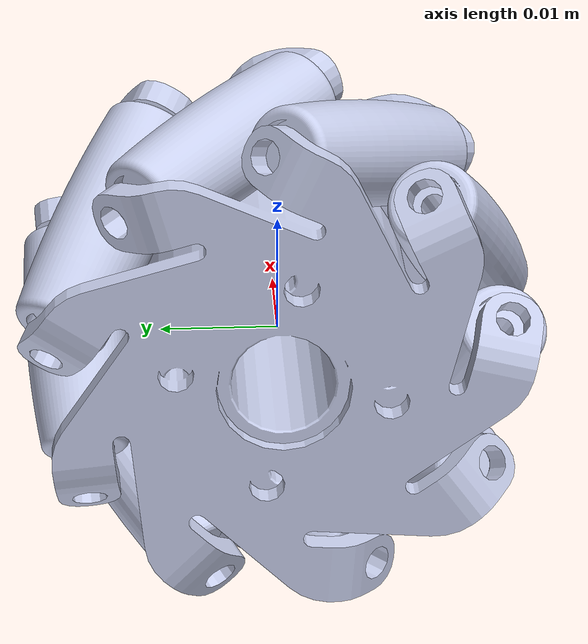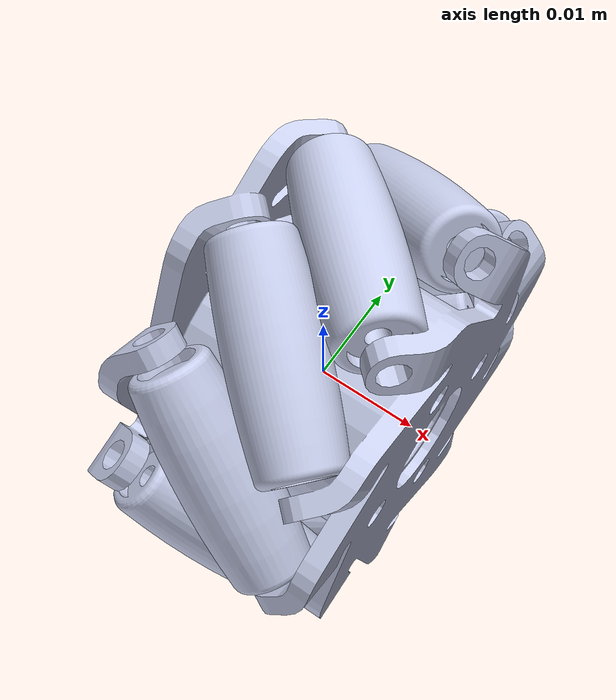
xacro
<?xml version="1.0"?>

<robot name="Mecanum-Left" xmlns:xacro="http://www.ros.org/wiki/xacro" >
  <link
    name="base_link">
    <inertial>
      <origin
        xyz="-5.71071320654166E-07 1.24074703998625E-17 -8.40087960733809E-19"
        rpy="0 0 0" />
      <mass
        value="0.0110925597603563" />
      <inertia
        ixx="1.39920510272198E-06"
        ixy="6.03598608368132E-22"
        ixz="2.70201401925188E-21"
        iyy="9.49230299056441E-07"
        iyz="-8.48228743085689E-23"
        izz="9.49230299056441E-07" />
    </inertial>
    <visual>
      <origin
        xyz="0 0 0"
        rpy="0 0 0" />
      <geometry>
        <mesh
          filename="file://$(find icarus_pi)/Mesh/Mecanum-Left/meshes/base_link.STL" />
      </geometry>
      <material
        name="">
        <color
          rgba="0.792156862745098 0.819607843137255 0.933333333333333 1" />
      </material>
    </visual>
    <collision>
      <origin
        xyz="0 0 0"
        rpy="0 0 0" />
      <geometry>
        <mesh
          filename="file://$(find icarus_pi)/Mesh/Mecanum-Left/meshes/base_link.STL" />
      </geometry>
    </collision>
  </link>
  <link
    name="Mecanum_roller_link_1">
    <inertial>
      <origin
        xyz="4.19537259525784E-05 -9.19403442267708E-17 -4.5102810375397E-17"
        rpy="0 0 0" />
      <mass
        value="0.00104310145784987" />
      <inertia
        ixx="9.96758957260103E-09"
        ixy="8.47860127866853E-24"
        ixz="-4.54949336904165E-24"
        iyy="3.79225492604175E-08"
        iyz="3.30872245021211E-24"
        izz="3.79225492604176E-08" />
    </inertial>
    <visual>
      <origin
        xyz="0 0 0"
        rpy="0 0 0" />
      <geometry>
        <mesh
          filename="file://$(find icarus_pi)/Mesh/Mecanum-Left/meshes/Mecanum_roller_link_1.STL" />
      </geometry>
      <material
        name="">
        <color
          rgba="0.792156862745098 0.819607843137255 0.933333333333333 1" />
      </material>
    </visual>
    <collision>
      <origin
        xyz="0 0 0"
        rpy="0 0 0" />
      <geometry>
        <mesh
          filename="file://$(find icarus_pi)/Mesh/Mecanum-Left/meshes/Mecanum_roller_link_1.STL" />
      </geometry>
    </collision>
  </link>
  <joint
    name="Mecanum_roller_joint_1"
    type="continuous">
    <origin
      xyz="0.00012912 0.014344 0.0095825"
      rpy="-2.7656 0.6249 2.6298" />
    <parent
      link="base_link" />
    <child
      link="Mecanum_roller_link_1" />
    <axis
      xyz="1 0 0" />
  </joint>
  <link
    name="Mecanum_roller_link_2">
    <inertial>
      <origin
        xyz="-4.19537259514885E-05 -2.77555756156289E-17 -9.71445146547012E-17"
        rpy="0 0 0" />
      <mass
        value="0.00104310145784987" />
      <inertia
        ixx="9.96758957260103E-09"
        ixy="1.68021061924834E-24"
        ixz="-5.37667398159468E-24"
        iyy="3.79225492604175E-08"
        iyz="-1.03397576569128E-25"
        izz="3.79225492604175E-08" />
    </inertial>
    <visual>
      <origin
        xyz="0 0 0"
        rpy="0 0 0" />
      <geometry>
        <mesh
          filename="file://$(find icarus_pi)/Mesh/Mecanum-Left/meshes/Mecanum_roller_link_2.STL" />
      </geometry>
      <material
        name="">
        <color
          rgba="0.792156862745098 0.819607843137255 0.933333333333333 1" />
      </material>
    </visual>
    <collision>
      <origin
        xyz="0 0 0"
        rpy="0 0 0" />
      <geometry>
        <mesh
          filename="file://$(find icarus_pi)/Mesh/Mecanum-Left/meshes/Mecanum_roller_link_2.STL" />
      </geometry>
    </collision>
  </link>
  <joint
    name="Mecanum_roller_joint_2"
    type="continuous">
    <origin
      xyz="-0.00012933 0.0045802 0.016631"
      rpy="1.6775 -0.19406 -0.76608" />
    <parent
      link="base_link" />
    <child
      link="Mecanum_roller_link_2" />
    <axis
      xyz="1 0 0" />
  </joint>
  <link
    name="Mecanum_roller_link_3">
    <inertial>
      <origin
        xyz="-4.19537259517232E-05 6.24500451351651E-17 -1.45716771982052E-16"
        rpy="0 0 0" />
      <mass
        value="0.00104310145784987" />
      <inertia
        ixx="9.96758957260103E-09"
        ixy="4.39439700418796E-24"
        ixz="-8.27180612553028E-25"
        iyy="3.79225492604175E-08"
        iyz="-1.65436122510606E-24"
        izz="3.79225492604175E-08" />
    </inertial>
    <visual>
      <origin
        xyz="0 0 0"
        rpy="0 0 0" />
      <geometry>
        <mesh
          filename="file://$(find icarus_pi)/Mesh/Mecanum-Left/meshes/Mecanum_roller_link_3.STL" />
      </geometry>
      <material
        name="">
        <color
          rgba="0.792156862745098 0.819607843137255 0.933333333333333 1" />
      </material>
    </visual>
    <collision>
      <origin
        xyz="0 0 0"
        rpy="0 0 0" />
      <geometry>
        <mesh
          filename="file://$(find icarus_pi)/Mesh/Mecanum-Left/meshes/Mecanum_roller_link_3.STL" />
      </geometry>
    </collision>
  </link>
  <joint
    name="Mecanum_roller_joint_3"
    type="continuous">
    <origin
      xyz="0.00012912 -0.006946 0.01579"
      rpy="1.4846 0.29377 -0.73958" />
    <parent
      link="base_link" />
    <child
      link="Mecanum_roller_link_3" />
    <axis
      xyz="1 0 0" />
  </joint>
  <link
    name="Mecanum_roller_link_4">
    <inertial>
      <origin
        xyz="-4.19537259518845E-05 9.54097911787244E-17 -5.03069808033274E-17"
        rpy="0 0 0" />
      <mass
        value="0.00104310145784987" />
      <inertia
        ixx="9.9675895729459E-09"
        ixy="-5.11818004017186E-24"
        ixz="2.68833699079734E-24"
        iyy="3.79225492606102E-08"
        iyz="-8.27180612553028E-25"
        izz="3.79225492606102E-08" />
    </inertial>
    <visual>
      <origin
        xyz="0 0 0"
        rpy="0 0 0" />
      <geometry>
        <mesh
          filename="file://$(find icarus_pi)/Mesh/Mecanum-Left/meshes/Mecanum_roller_link_4.STL" />
      </geometry>
      <material
        name="">
        <color
          rgba="0.792156862745098 0.819607843137255 0.933333333333333 1" />
      </material>
    </visual>
    <collision>
      <origin
        xyz="0 0 0"
        rpy="0 0 0" />
      <geometry>
        <mesh
          filename="file://$(find icarus_pi)/Mesh/Mecanum-Left/meshes/Mecanum_roller_link_4.STL" />
      </geometry>
    </collision>
  </link>
  <joint
    name="Mecanum_roller_joint_4"
    type="continuous">
    <origin
      xyz="0.00012912 -0.015471 0.0076312"
      rpy="1.4497 0.68992 -0.41086" />
    <parent
      link="base_link" />
    <child
      link="Mecanum_roller_link_4" />
    <axis
      xyz="1 0 0" />
  </joint>
  <link
    name="Mecanum_roller_link_5">
    <inertial>
      <origin
        xyz="4.1659597956364E-05 1.04950770296597E-16 1.38777878078145E-17"
        rpy="0 0 0" />
      <mass
        value="0.00104310145784987" />
      <inertia
        ixx="9.96758957260103E-09"
        ixy="3.87740912134232E-25"
        ixz="-2.1713491079517E-24"
        iyy="3.79225492604175E-08"
        iyz="2.06795153138257E-25"
        izz="3.79225492604175E-08" />
    </inertial>
    <visual>
      <origin
        xyz="0 0 0"
        rpy="0 0 0" />
      <geometry>
        <mesh
          filename="file://$(find icarus_pi)/Mesh/Mecanum-Left/meshes/Mecanum_roller_link_5.STL" />
      </geometry>
      <material
        name="">
        <color
          rgba="0.792156862745098 0.819607843137255 0.933333333333333 1" />
      </material>
    </visual>
    <collision>
      <origin
        xyz="0 0 0"
        rpy="0 0 0" />
      <geometry>
        <mesh
          filename="file://$(find icarus_pi)/Mesh/Mecanum-Left/meshes/Mecanum_roller_link_5.STL" />
      </geometry>
    </collision>
  </link>
  <joint
    name="Mecanum_roller_joint_5"
    type="continuous">
    <origin
      xyz="0.00012912 -0.016757 -0.0040986"
      rpy="1.6948 0.7554 0.24013" />
    <parent
      link="base_link" />
    <child
      link="Mecanum_roller_link_5" />
    <axis
      xyz="1 0 0" />
  </joint>
  <link
    name="Mecanum_roller_link_6">
    <inertial>
      <origin
        xyz="-4.19537259515289E-05 6.93889390390723E-18 1.73472347597681E-18"
        rpy="0 0 0" />
      <mass
        value="0.00104310145784984" />
      <inertia
        ixx="9.96758957158561E-09"
        ixy="-6.04875822929401E-24"
        ixz="-1.15805285757424E-23"
        iyy="3.79225492599098E-08"
        iyz="8.27180612553028E-25"
        izz="3.79225492599098E-08" />
    </inertial>
    <visual>
      <origin
        xyz="0 0 0"
        rpy="0 0 0" />
      <geometry>
        <mesh
          filename="file://$(find icarus_pi)/Mesh/Mecanum-Left/meshes/Mecanum_roller_link_6.STL" />
      </geometry>
      <material
        name="">
        <color
          rgba="0.792156862745098 0.819607843137255 0.933333333333333 1" />
      </material>
    </visual>
    <collision>
      <origin
        xyz="0 0 0"
        rpy="0 0 0" />
      <geometry>
        <mesh
          filename="file://$(find icarus_pi)/Mesh/Mecanum-Left/meshes/Mecanum_roller_link_6.STL" />
      </geometry>
    </collision>
  </link>
  <joint
    name="Mecanum_roller_joint_6"
    type="continuous">
    <origin
      xyz="0.00012912 -0.010202 -0.013911"
      rpy="1.7524 0.42673 0.68129" />
    <parent
      link="base_link" />
    <child
      link="Mecanum_roller_link_6" />
    <axis
      xyz="1 0 0" />
  </joint>
  <link
    name="Mecanum_roller_link_7">
    <inertial>
      <origin
        xyz="-4.19537259513104E-05 6.24500451351651E-17 4.16333634234434E-17"
        rpy="0 0 0" />
      <mass
        value="0.00104310145784987" />
      <inertia
        ixx="9.96758957260102E-09"
        ixy="-3.30872245021211E-24"
        ixz="-1.03397576569128E-24"
        iyy="3.79225492604175E-08"
        iyz="2.48154183765908E-24"
        izz="3.79225492604175E-08" />
    </inertial>
    <visual>
      <origin
        xyz="0 0 0"
        rpy="0 0 0" />
      <geometry>
        <mesh
          filename="file://$(find icarus_pi)/Mesh/Mecanum-Left/meshes/Mecanum_roller_link_7.STL" />
      </geometry>
      <material
        name="">
        <color
          rgba="0.792156862745098 0.819607843137255 0.933333333333333 1" />
      </material>
    </visual>
    <collision>
      <origin
        xyz="0 0 0"
        rpy="0 0 0" />
      <geometry>
        <mesh
          filename="file://$(find icarus_pi)/Mesh/Mecanum-Left/meshes/Mecanum_roller_link_7.STL" />
      </geometry>
    </collision>
  </link>
  <joint
    name="Mecanum_roller_joint_7"
    type="continuous">
    <origin
      xyz="0.00012912 0.0011266 -0.017214"
      rpy="2.5112 -0.051481 0.78407" />
    <parent
      link="base_link" />
    <child
      link="Mecanum_roller_link_7" />
    <axis
      xyz="1 0 0" />
  </joint>
  <link
    name="Mecanum_roller_link_8">
    <inertial>
      <origin
        xyz="4.16595979570254E-05 -8.67361737988404E-18 -6.93889390390723E-18"
        rpy="0 0 0" />
      <mass
        value="0.00104310145784987" />
      <inertia
        ixx="9.96758957226301E-09"
        ixy="-4.23930063933427E-24"
        ixz="-3.30872245021211E-24"
        iyy="3.79225492602485E-08"
        iyz="-4.13590306276514E-25"
        izz="3.79225492602485E-08" />
    </inertial>
    <visual>
      <origin
        xyz="0 0 0"
        rpy="0 0 0" />
      <geometry>
        <mesh
          filename="file://$(find icarus_pi)/Mesh/Mecanum-Left/meshes/Mecanum_roller_link_8.STL" />
      </geometry>
      <material
        name="">
        <color
          rgba="0.792156862745098 0.819607843137255 0.933333333333333 1" />
      </material>
    </visual>
    <collision>
      <origin
        xyz="0 0 0"
        rpy="0 0 0" />
      <geometry>
        <mesh
          filename="file://$(find icarus_pi)/Mesh/Mecanum-Left/meshes/Mecanum_roller_link_8.STL" />
      </geometry>
    </collision>
  </link>
  <joint
    name="Mecanum_roller_joint_8"
    type="continuous">
    <origin
      xyz="-0.00012933 0.012113 -0.012282"
      rpy="-1.7252 -0.51523 0.6222" />
    <parent
      link="base_link" />
    <child
      link="Mecanum_roller_link_8" />
    <axis
      xyz="1 0 0" />
  </joint>
  <link
    name="Mecanum_roller_link_9">
    <inertial>
      <origin
        xyz="-4.19537259509657E-05 8.02309607639273E-17 -1.04083408558608E-17"
        rpy="0 0 0" />
      <mass
        value="0.00104310145784987" />
      <inertia
        ixx="9.96758957260103E-09"
        ixy="-3.36042123849667E-25"
        ixz="2.99852972050473E-24"
        iyy="3.79225492604175E-08"
        iyz="-4.13590306276514E-25"
        izz="3.79225492604175E-08" />
    </inertial>
    <visual>
      <origin
        xyz="0 0 0"
        rpy="0 0 0" />
      <geometry>
        <mesh
          filename="file://$(find icarus_pi)/Mesh/Mecanum-Left/meshes/Mecanum_roller_link_9.STL" />
      </geometry>
      <material
        name="">
        <color
          rgba="0.792156862745098 0.819607843137255 0.933333333333333 1" />
      </material>
    </visual>
    <collision>
      <origin
        xyz="0 0 0"
        rpy="0 0 0" />
      <geometry>
        <mesh
          filename="file://$(find icarus_pi)/Mesh/Mecanum-Left/meshes/Mecanum_roller_link_9.STL" />
      </geometry>
    </collision>
  </link>
  <joint
    name="Mecanum_roller_joint_9"
    type="continuous">
    <origin
      xyz="0.00012912 0.017148 -0.0018797"
      rpy="1.5575 -0.78024 0.10117" />
    <parent
      link="base_link" />
    <child
      link="Mecanum_roller_link_9" />
    <axis
      xyz="1 0 0" />
  </joint>

    <ros2_control name="gazeboSimSystem" type="system">
		<hardware>
			<plugin>gazebo_ros2_control/GazeboSystem</plugin>
		</hardware>

		<joint name="Mecanum_roller_joint_1">
			<command_interface name="velocity">
				<param name="min">-100</param>
				<param name="max">100</param>
			</command_interface>
			<state_interface name="position"/>
			<state_interface name="velocity"/>
		</joint>

		<joint name="Mecanum_roller_joint_2">
			<command_interface name="velocity">
				<param name="min">-100</param>
				<param name="max">100</param>
			</command_interface>
			<state_interface name="position"/>
			<state_interface name="velocity"/>
		</joint>

    		<joint name="Mecanum_roller_joint_3">
			<command_interface name="velocity">
				<param name="min">-100</param>
				<param name="max">100</param>
			</command_interface>
			<state_interface name="position"/>
			<state_interface name="velocity"/>
		</joint>

    		<joint name="Mecanum_roller_joint_4">
			<command_interface name="velocity">
				<param name="min">-100</param>
				<param name="max">100</param>
			</command_interface>
			<state_interface name="position"/>
			<state_interface name="velocity"/>
		</joint>

    		<joint name="Mecanum_roller_joint_5">
			<command_interface name="velocity">
				<param name="min">-100</param>
				<param name="max">100</param>
			</command_interface>
			<state_interface name="position"/>
			<state_interface name="velocity"/>
		</joint>

    		<joint name="Mecanum_roller_joint_6">
			<command_interface name="velocity">
				<param name="min">-100</param>
				<param name="max">100</param>
			</command_interface>
			<state_interface name="position"/>
			<state_interface name="velocity"/>
		</joint>

    		<joint name="Mecanum_roller_joint_7">
			<command_interface name="velocity">
				<param name="min">-100</param>
				<param name="max">100</param>
			</command_interface>
			<state_interface name="position"/>
			<state_interface name="velocity"/>
		</joint>

    		<joint name="Mecanum_roller_joint_8">
			<command_interface name="velocity">
				<param name="min">-100</param>
				<param name="max">100</param>
			</command_interface>
			<state_interface name="position"/>
			<state_interface name="velocity"/>
		</joint>

    		<joint name="Mecanum_roller_joint_9">
			<command_interface name="velocity">
				<param name="min">-100</param>
				<param name="max">100</param>
			</command_interface>
			<state_interface name="position"/>
			<state_interface name="velocity"/>
		</joint>
	</ros2_control>

  	<gazebo>
		<plugin filename="libgazebo_ros2_control.so" name="gazebo_ros2_control">
			<parameters>$(find icarus_pi)/config/controllers.yaml</parameters>
			<robot_param>robot_description</robot_param>
			<robot_param_node>robot_state_publisher</robot_param_node>
			<controller_manager_name>icarus_controller_manager</controller_manager_name>
		</plugin>
	</gazebo>

</robot>
